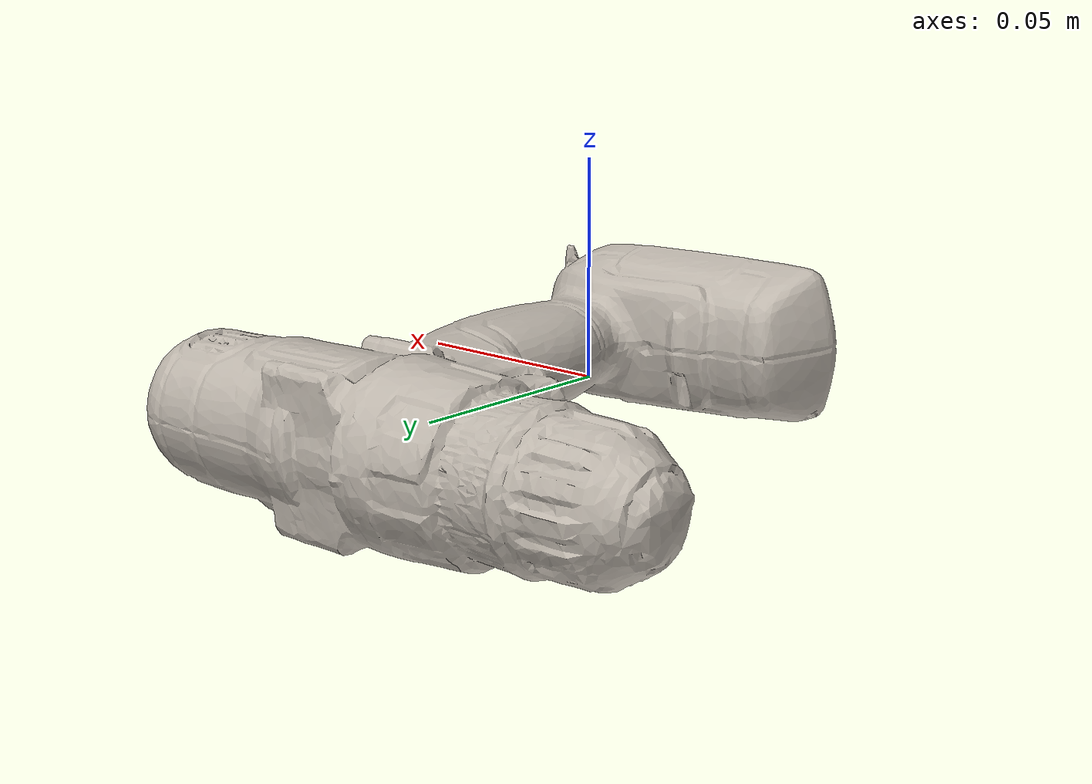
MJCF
<mujoco model="bread">
  <asset>
    <mesh file="nontextured.stl" name="obj_mesh" scale="0.8 0.8 0.8"/>
    <texture file="../../../../../textures/bread.png" type="2d" name="tex-bread" />
    <material name="bread" reflectance="0.7" texrepeat="15 15" texture="tex-bread" texuniform="true"/>
  </asset>
  <worldbody>
    <body>
      <body name="collision">
        <geom pos="0.045955499999999996 -0.0105875 -0.0254735" mesh="obj_mesh" type="mesh" solimp="0.998 0.998 0.001" solref="0.001 1" density="50" friction="0.95 0.3 0.1"  material="bread" group="1" condim="4"/>
      </body>
      <body name="visual">
        <geom pos="0.045955499999999996 -0.0105875 -0.0254735" mesh="obj_mesh" type="mesh" material="bread"  conaffinity="0" contype="0"  group="0" mass="0.0001"/>
        <geom pos="0.045955499999999996 -0.0105875 -0.0254735" mesh="obj_mesh" type="mesh" material="bread"  conaffinity="0" contype="0"  group="1" mass="0.0001"/>
      </body>
      <site rgba="0 0 0 0" size="0.005" pos="0 0 -0.028646500000000002" name="bottom_site"/>
      <site rgba="0 0 0 0" size="0.005" pos="0 0 0.028646500000000002" name="top_site"/>
      <site rgba="0 0 0 0" size="0.005" pos="0.09210349999999999 0.0937575 0.028646500000000002" name="horizontal_radius_site"/>
    </body>
  </worldbody>
</mujoco>
